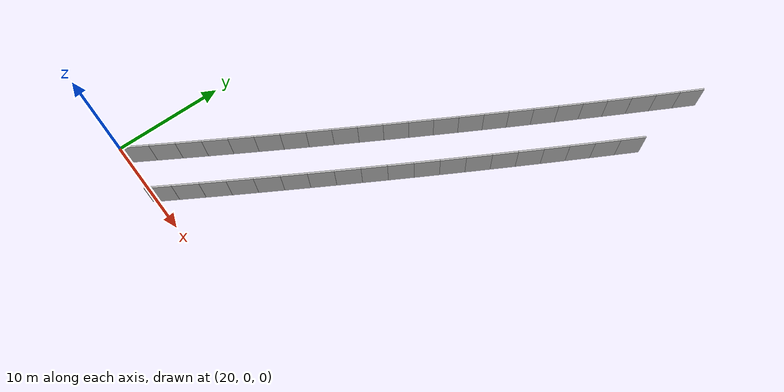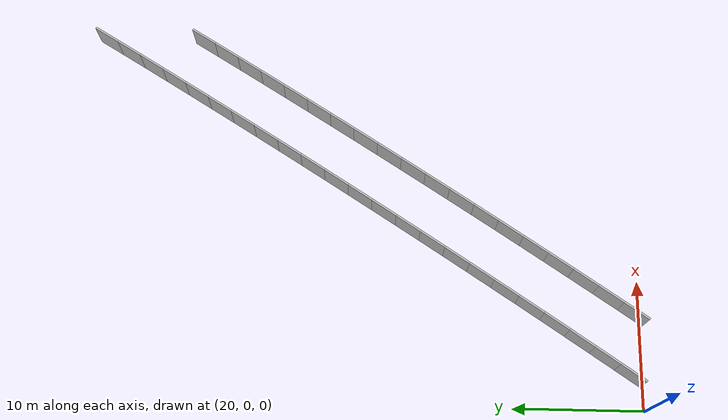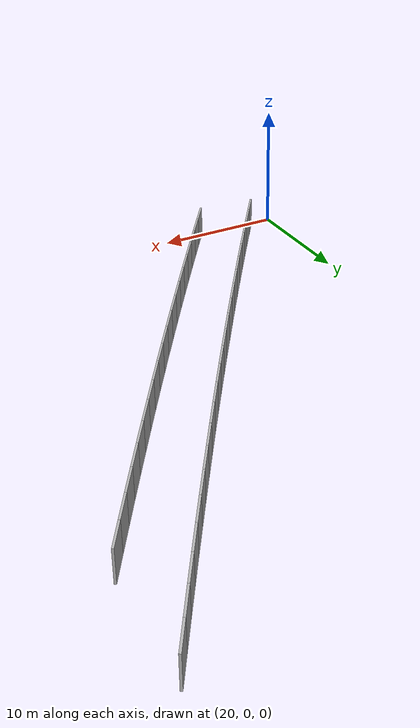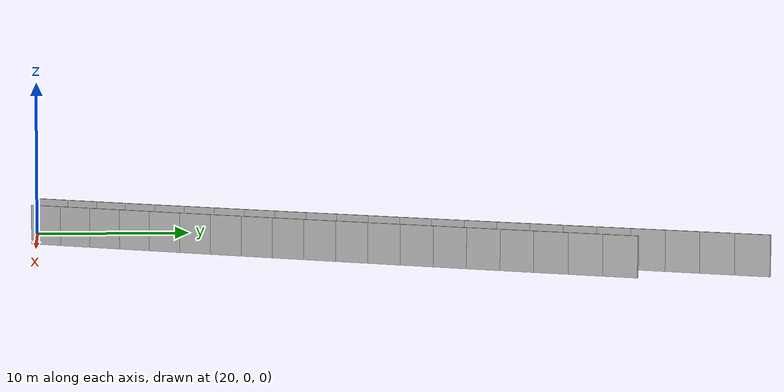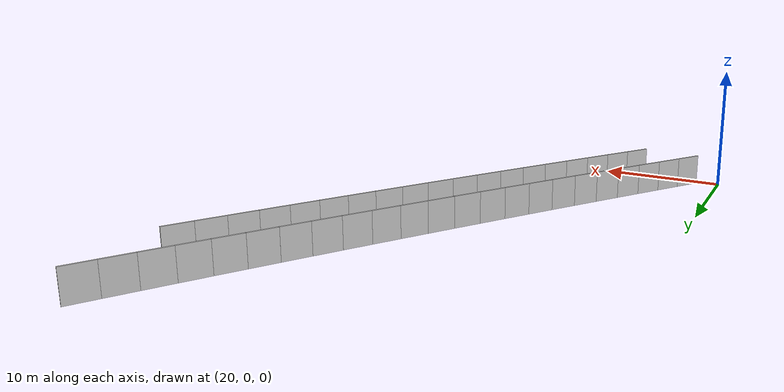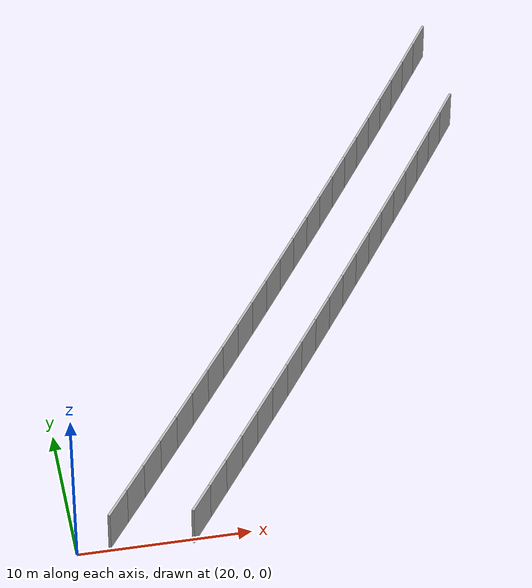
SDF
<?xml version="1.0" ?>
<sdf version="1.6">
  <model name="sps_4314">
    <pose frame="">0 0 0 0 -0 0</pose>
    <static>1</static>
    <self_collide>0</self_collide>
    <allow_auto_disable>0</allow_auto_disable>
    <link name="Wall4295">
      <kinematic>0</kinematic>
      <gravity>1</gravity>
      <self_collide>0</self_collide>
      <collision name="collision">
        <geometry>
          <box>
            <size>2.25463 0.15 2.5</size>
          </box>
        </geometry>
        <pose frame="">0 0 0 0 -0 0</pose>
      </collision>
      <visual name="visual">
        <geometry>
          <box>
            <size>2.25463 0.15 2.5</size>
          </box>
        </geometry>
        <pose frame="">0 0 0 0 -0 0</pose>
        <cast_shadows>1</cast_shadows>
        <transparency>0.0</transparency>
      </visual>
      <pose frame="">27.223 0.656997 1.25 0 -0 0.971576</pose>
    </link>
    <link name="Wall4296">
      <kinematic>0</kinematic>
      <gravity>1</gravity>
      <self_collide>0</self_collide>
      <collision name="collision">
        <geometry>
          <box>
            <size>2.25454 0.15 2.5</size>
          </box>
        </geometry>
        <pose frame="">0 0 0 0 -0 0</pose>
      </collision>
      <visual name="visual">
        <geometry>
          <box>
            <size>2.25454 0.15 2.5</size>
          </box>
        </geometry>
        <pose frame="">0 0 0 0 -0 0</pose>
        <cast_shadows>1</cast_shadows>
        <transparency>0.0</transparency>
      </visual>
      <pose frame="">28.4922 2.5204 1.25 0 -0 0.974136</pose>
    </link>
    <link name="Wall4297">
      <kinematic>0</kinematic>
      <gravity>1</gravity>
      <self_collide>0</self_collide>
      <collision name="collision">
        <geometry>
          <box>
            <size>2.25468 0.15 2.5</size>
          </box>
        </geometry>
        <pose frame="">0 0 0 0 -0 0</pose>
      </collision>
      <visual name="visual">
        <geometry>
          <box>
            <size>2.25468 0.15 2.5</size>
          </box>
        </geometry>
        <pose frame="">0 0 0 0 -0 0</pose>
        <cast_shadows>1</cast_shadows>
        <transparency>0.0</transparency>
      </visual>
      <pose frame="">29.7569 4.38689 1.25 0 -0 0.976404</pose>
    </link>
    <link name="Wall4298">
      <kinematic>0</kinematic>
      <gravity>1</gravity>
      <self_collide>0</self_collide>
      <collision name="collision">
        <geometry>
          <box>
            <size>2.25472 0.15 2.5</size>
          </box>
        </geometry>
        <pose frame="">0 0 0 0 -0 0</pose>
      </collision>
      <visual name="visual">
        <geometry>
          <box>
            <size>2.25472 0.15 2.5</size>
          </box>
        </geometry>
        <pose frame="">0 0 0 0 -0 0</pose>
        <cast_shadows>1</cast_shadows>
        <transparency>0.0</transparency>
      </visual>
      <pose frame="">31.0174 6.25639 1.25 0 -0 0.9788</pose>
    </link>
    <link name="Wall4299">
      <kinematic>0</kinematic>
      <gravity>1</gravity>
      <self_collide>0</self_collide>
      <collision name="collision">
        <geometry>
          <box>
            <size>2.2552 0.15 2.5</size>
          </box>
        </geometry>
        <pose frame="">0 0 0 0 -0 0</pose>
      </collision>
      <visual name="visual">
        <geometry>
          <box>
            <size>2.2552 0.15 2.5</size>
          </box>
        </geometry>
        <pose frame="">0 0 0 0 -0 0</pose>
        <cast_shadows>1</cast_shadows>
        <transparency>0.0</transparency>
      </visual>
      <pose frame="">32.2735 8.1291 1.25 0 -0 0.981157</pose>
    </link>
    <link name="Wall4300">
      <kinematic>0</kinematic>
      <gravity>1</gravity>
      <self_collide>0</self_collide>
      <collision name="collision">
        <geometry>
          <box>
            <size>2.2546 0.15 2.5</size>
          </box>
        </geometry>
        <pose frame="">0 0 0 0 -0 0</pose>
      </collision>
      <visual name="visual">
        <geometry>
          <box>
            <size>2.2546 0.15 2.5</size>
          </box>
        </geometry>
        <pose frame="">0 0 0 0 -0 0</pose>
        <cast_shadows>1</cast_shadows>
        <transparency>0.0</transparency>
      </visual>
      <pose frame="">33.5252 10.0047 1.25 0 -0 0.983454</pose>
    </link>
    <link name="Wall4301">
      <kinematic>0</kinematic>
      <gravity>1</gravity>
      <self_collide>0</self_collide>
      <collision name="collision">
        <geometry>
          <box>
            <size>2.25463 0.15 2.5</size>
          </box>
        </geometry>
        <pose frame="">0 0 0 0 -0 0</pose>
      </collision>
      <visual name="visual">
        <geometry>
          <box>
            <size>2.25463 0.15 2.5</size>
          </box>
        </geometry>
        <pose frame="">0 0 0 0 -0 0</pose>
        <cast_shadows>1</cast_shadows>
        <transparency>0.0</transparency>
      </visual>
      <pose frame="">34.7721 11.8831 1.25 0 -0 0.98603</pose>
    </link>
    <link name="Wall4302">
      <kinematic>0</kinematic>
      <gravity>1</gravity>
      <self_collide>0</self_collide>
      <collision name="collision">
        <geometry>
          <box>
            <size>2.25459 0.15 2.5</size>
          </box>
        </geometry>
        <pose frame="">0 0 0 0 -0 0</pose>
      </collision>
      <visual name="visual">
        <geometry>
          <box>
            <size>2.25459 0.15 2.5</size>
          </box>
        </geometry>
        <pose frame="">0 0 0 0 -0 0</pose>
        <cast_shadows>1</cast_shadows>
        <transparency>0.0</transparency>
      </visual>
      <pose frame="">36.0145 13.7645 1.25 0 -0 0.98832</pose>
    </link>
    <link name="Wall4303">
      <kinematic>0</kinematic>
      <gravity>1</gravity>
      <self_collide>0</self_collide>
      <collision name="collision">
        <geometry>
          <box>
            <size>2.25464 0.15 2.5</size>
          </box>
        </geometry>
        <pose frame="">0 0 0 0 -0 0</pose>
      </collision>
      <visual name="visual">
        <geometry>
          <box>
            <size>2.25464 0.15 2.5</size>
          </box>
        </geometry>
        <pose frame="">0 0 0 0 -0 0</pose>
        <cast_shadows>1</cast_shadows>
        <transparency>0.0</transparency>
      </visual>
      <pose frame="">37.2526 15.6488 1.25 0 -0 0.9907</pose>
    </link>
    <link name="Wall4304">
      <kinematic>0</kinematic>
      <gravity>1</gravity>
      <self_collide>0</self_collide>
      <collision name="collision">
        <geometry>
          <box>
            <size>2.25474 0.15 2.5</size>
          </box>
        </geometry>
        <pose frame="">0 0 0 0 -0 0</pose>
      </collision>
      <visual name="visual">
        <geometry>
          <box>
            <size>2.25474 0.15 2.5</size>
          </box>
        </geometry>
        <pose frame="">0 0 0 0 -0 0</pose>
        <cast_shadows>1</cast_shadows>
        <transparency>0.0</transparency>
      </visual>
      <pose frame="">38.4861 17.5361 1.25 0 -0 0.993057</pose>
    </link>
    <link name="Wall4305">
      <kinematic>0</kinematic>
      <gravity>1</gravity>
      <self_collide>0</self_collide>
      <collision name="collision">
        <geometry>
          <box>
            <size>2.2546 0.15 2.5</size>
          </box>
        </geometry>
        <pose frame="">0 0 0 0 -0 0</pose>
      </collision>
      <visual name="visual">
        <geometry>
          <box>
            <size>2.2546 0.15 2.5</size>
          </box>
        </geometry>
        <pose frame="">0 0 0 0 -0 0</pose>
        <cast_shadows>1</cast_shadows>
        <transparency>0.0</transparency>
      </visual>
      <pose frame="">39.7152 19.4263 1.25 0 -0 0.995438</pose>
    </link>
    <link name="Wall4306">
      <kinematic>0</kinematic>
      <gravity>1</gravity>
      <self_collide>0</self_collide>
      <collision name="collision">
        <geometry>
          <box>
            <size>2.25457 0.15 2.5</size>
          </box>
        </geometry>
        <pose frame="">0 0 0 0 -0 0</pose>
      </collision>
      <visual name="visual">
        <geometry>
          <box>
            <size>2.25457 0.15 2.5</size>
          </box>
        </geometry>
        <pose frame="">0 0 0 0 -0 0</pose>
        <cast_shadows>1</cast_shadows>
        <transparency>0.0</transparency>
      </visual>
      <pose frame="">40.9398 21.3193 1.25 0 -0 0.997751</pose>
    </link>
    <link name="Wall4307">
      <kinematic>0</kinematic>
      <gravity>1</gravity>
      <self_collide>0</self_collide>
      <collision name="collision">
        <geometry>
          <box>
            <size>2.25438 0.15 2.5</size>
          </box>
        </geometry>
        <pose frame="">0 0 0 0 -0 0</pose>
      </collision>
      <visual name="visual">
        <geometry>
          <box>
            <size>2.25438 0.15 2.5</size>
          </box>
        </geometry>
        <pose frame="">0 0 0 0 -0 0</pose>
        <cast_shadows>1</cast_shadows>
        <transparency>0.0</transparency>
      </visual>
      <pose frame="">42.1598 23.2152 1.25 0 -0 1.00034</pose>
    </link>
    <link name="Wall4308">
      <kinematic>0</kinematic>
      <gravity>1</gravity>
      <self_collide>0</self_collide>
      <collision name="collision">
        <geometry>
          <box>
            <size>2.25457 0.15 2.5</size>
          </box>
        </geometry>
        <pose frame="">0 0 0 0 -0 0</pose>
      </collision>
      <visual name="visual">
        <geometry>
          <box>
            <size>2.25457 0.15 2.5</size>
          </box>
        </geometry>
        <pose frame="">0 0 0 0 -0 0</pose>
        <cast_shadows>1</cast_shadows>
        <transparency>0.0</transparency>
      </visual>
      <pose frame="">43.3751 25.114 1.25 0 -0 1.00251</pose>
    </link>
    <link name="Wall4309">
      <kinematic>0</kinematic>
      <gravity>1</gravity>
      <self_collide>0</self_collide>
      <collision name="collision">
        <geometry>
          <box>
            <size>2.25479 0.15 2.5</size>
          </box>
        </geometry>
        <pose frame="">0 0 0 0 -0 0</pose>
      </collision>
      <visual name="visual">
        <geometry>
          <box>
            <size>2.25479 0.15 2.5</size>
          </box>
        </geometry>
        <pose frame="">0 0 0 0 -0 0</pose>
        <cast_shadows>1</cast_shadows>
        <transparency>0.0</transparency>
      </visual>
      <pose frame="">44.5862 27.0158 1.25 0 -0 1.00498</pose>
    </link>
    <link name="Wall4310">
      <kinematic>0</kinematic>
      <gravity>1</gravity>
      <self_collide>0</self_collide>
      <collision name="collision">
        <geometry>
          <box>
            <size>2.25455 0.15 2.5</size>
          </box>
        </geometry>
        <pose frame="">0 0 0 0 -0 0</pose>
      </collision>
      <visual name="visual">
        <geometry>
          <box>
            <size>2.25455 0.15 2.5</size>
          </box>
        </geometry>
        <pose frame="">0 0 0 0 -0 0</pose>
        <cast_shadows>1</cast_shadows>
        <transparency>0.0</transparency>
      </visual>
      <pose frame="">45.7927 28.9205 1.25 0 -0 1.00732</pose>
    </link>
    <link name="Wall4311">
      <kinematic>0</kinematic>
      <gravity>1</gravity>
      <self_collide>0</self_collide>
      <collision name="collision">
        <geometry>
          <box>
            <size>2.25461 0.15 2.5</size>
          </box>
        </geometry>
        <pose frame="">0 0 0 0 -0 0</pose>
      </collision>
      <visual name="visual">
        <geometry>
          <box>
            <size>2.25461 0.15 2.5</size>
          </box>
        </geometry>
        <pose frame="">0 0 0 0 -0 0</pose>
        <cast_shadows>1</cast_shadows>
        <transparency>0.0</transparency>
      </visual>
      <pose frame="">46.9947 30.828 1.25 0 -0 1.00977</pose>
    </link>
    <link name="Wall4312">
      <kinematic>0</kinematic>
      <gravity>1</gravity>
      <self_collide>0</self_collide>
      <collision name="collision">
        <geometry>
          <box>
            <size>2.2545 0.15 2.5</size>
          </box>
        </geometry>
        <pose frame="">0 0 0 0 -0 0</pose>
      </collision>
      <visual name="visual">
        <geometry>
          <box>
            <size>2.2545 0.15 2.5</size>
          </box>
        </geometry>
        <pose frame="">0 0 0 0 -0 0</pose>
        <cast_shadows>1</cast_shadows>
        <transparency>0.0</transparency>
      </visual>
      <pose frame="">48.192 32.7383 1.25 0 -0 1.01204</pose>
    </link>
    <link name="Wall4313">
      <kinematic>0</kinematic>
      <gravity>1</gravity>
      <self_collide>0</self_collide>
      <collision name="collision">
        <geometry>
          <box>
            <size>2.25462 0.15 2.5</size>
          </box>
        </geometry>
        <pose frame="">0 0 0 0 -0 0</pose>
      </collision>
      <visual name="visual">
        <geometry>
          <box>
            <size>2.25462 0.15 2.5</size>
          </box>
        </geometry>
        <pose frame="">0 0 0 0 -0 0</pose>
        <cast_shadows>1</cast_shadows>
        <transparency>0.0</transparency>
      </visual>
      <pose frame="">49.3849 34.6514 1.25 0 -0 1.01446</pose>
    </link>
    <link name="Wall6019">
      <kinematic>0</kinematic>
      <gravity>1</gravity>
      <self_collide>0</self_collide>
      <collision name="collision">
        <geometry>
          <box>
            <size>2.24477 0.15 2.5</size>
          </box>
        </geometry>
        <pose frame="">0 0 0 0 -0 0</pose>
      </collision>
      <visual name="visual">
        <geometry>
          <box>
            <size>2.24477 0.15 2.5</size>
          </box>
        </geometry>
        <pose frame="">0 0 0 0 -0 0</pose>
        <cast_shadows>1</cast_shadows>
        <transparency>0.0</transparency>
      </visual>
      <pose frame="">22.537 1.1393 1.25 0 -0 0.969332</pose>
    </link>
    <link name="Wall6020">
      <kinematic>0</kinematic>
      <gravity>1</gravity>
      <self_collide>0</self_collide>
      <collision name="collision">
        <geometry>
          <box>
            <size>2.24487 0.15 2.5</size>
          </box>
        </geometry>
        <pose frame="">0 0 0 0 -0 0</pose>
      </collision>
      <visual name="visual">
        <geometry>
          <box>
            <size>2.24487 0.15 2.5</size>
          </box>
        </geometry>
        <pose frame="">0 0 0 0 -0 0</pose>
        <cast_shadows>1</cast_shadows>
        <transparency>0.0</transparency>
      </visual>
      <pose frame="">23.805 2.99171 1.25 0 -0 0.971769</pose>
    </link>
    <link name="Wall6021">
      <kinematic>0</kinematic>
      <gravity>1</gravity>
      <self_collide>0</self_collide>
      <collision name="collision">
        <geometry>
          <box>
            <size>2.2447 0.15 2.5</size>
          </box>
        </geometry>
        <pose frame="">0 0 0 0 -0 0</pose>
      </collision>
      <visual name="visual">
        <geometry>
          <box>
            <size>2.2447 0.15 2.5</size>
          </box>
        </geometry>
        <pose frame="">0 0 0 0 -0 0</pose>
        <cast_shadows>1</cast_shadows>
        <transparency>0.0</transparency>
      </visual>
      <pose frame="">25.0685 4.84709 1.25 0 -0 0.974053</pose>
    </link>
    <link name="Wall6022">
      <kinematic>0</kinematic>
      <gravity>1</gravity>
      <self_collide>0</self_collide>
      <collision name="collision">
        <geometry>
          <box>
            <size>2.24471 0.15 2.5</size>
          </box>
        </geometry>
        <pose frame="">0 0 0 0 -0 0</pose>
      </collision>
      <visual name="visual">
        <geometry>
          <box>
            <size>2.24471 0.15 2.5</size>
          </box>
        </geometry>
        <pose frame="">0 0 0 0 -0 0</pose>
        <cast_shadows>1</cast_shadows>
        <transparency>0.0</transparency>
      </visual>
      <pose frame="">26.3278 6.70528 1.25 0 -0 0.976323</pose>
    </link>
    <link name="Wall6023">
      <kinematic>0</kinematic>
      <gravity>1</gravity>
      <self_collide>0</self_collide>
      <collision name="collision">
        <geometry>
          <box>
            <size>2.24479 0.15 2.5</size>
          </box>
        </geometry>
        <pose frame="">0 0 0 0 -0 0</pose>
      </collision>
      <visual name="visual">
        <geometry>
          <box>
            <size>2.24479 0.15 2.5</size>
          </box>
        </geometry>
        <pose frame="">0 0 0 0 -0 0</pose>
        <cast_shadows>1</cast_shadows>
        <transparency>0.0</transparency>
      </visual>
      <pose frame="">27.5828 8.56648 1.25 0 -0 0.978804</pose>
    </link>
    <link name="Wall6024">
      <kinematic>0</kinematic>
      <gravity>1</gravity>
      <self_collide>0</self_collide>
      <collision name="collision">
        <geometry>
          <box>
            <size>2.24499 0.15 2.5</size>
          </box>
        </geometry>
        <pose frame="">0 0 0 0 -0 0</pose>
      </collision>
      <visual name="visual">
        <geometry>
          <box>
            <size>2.24499 0.15 2.5</size>
          </box>
        </geometry>
        <pose frame="">0 0 0 0 -0 0</pose>
        <cast_shadows>1</cast_shadows>
        <transparency>0.0</transparency>
      </visual>
      <pose frame="">28.8332 10.4309 1.25 0 -0 0.981255</pose>
    </link>
    <link name="Wall6025">
      <kinematic>0</kinematic>
      <gravity>1</gravity>
      <self_collide>0</self_collide>
      <collision name="collision">
        <geometry>
          <box>
            <size>2.24474 0.15 2.5</size>
          </box>
        </geometry>
        <pose frame="">0 0 0 0 -0 0</pose>
      </collision>
      <visual name="visual">
        <geometry>
          <box>
            <size>2.24474 0.15 2.5</size>
          </box>
        </geometry>
        <pose frame="">0 0 0 0 -0 0</pose>
        <cast_shadows>1</cast_shadows>
        <transparency>0.0</transparency>
      </visual>
      <pose frame="">30.079 12.2983 1.25 0 -0 0.983631</pose>
    </link>
    <link name="Wall6026">
      <kinematic>0</kinematic>
      <gravity>1</gravity>
      <self_collide>0</self_collide>
      <collision name="collision">
        <geometry>
          <box>
            <size>2.24483 0.15 2.5</size>
          </box>
        </geometry>
        <pose frame="">0 0 0 0 -0 0</pose>
      </collision>
      <visual name="visual">
        <geometry>
          <box>
            <size>2.24483 0.15 2.5</size>
          </box>
        </geometry>
        <pose frame="">0 0 0 0 -0 0</pose>
        <cast_shadows>1</cast_shadows>
        <transparency>0.0</transparency>
      </visual>
      <pose frame="">31.3205 14.1685 1.25 0 -0 0.985878</pose>
    </link>
    <link name="Wall6027">
      <kinematic>0</kinematic>
      <gravity>1</gravity>
      <self_collide>0</self_collide>
      <collision name="collision">
        <geometry>
          <box>
            <size>2.24541 0.15 2.5</size>
          </box>
        </geometry>
        <pose frame="">0 0 0 0 -0 0</pose>
      </collision>
      <visual name="visual">
        <geometry>
          <box>
            <size>2.24541 0.15 2.5</size>
          </box>
        </geometry>
        <pose frame="">0 0 0 0 -0 0</pose>
        <cast_shadows>1</cast_shadows>
        <transparency>0.0</transparency>
      </visual>
      <pose frame="">32.558 16.0418 1.25 0 -0 0.988199</pose>
    </link>
    <link name="Wall6028">
      <kinematic>0</kinematic>
      <gravity>1</gravity>
      <self_collide>0</self_collide>
      <collision name="collision">
        <geometry>
          <box>
            <size>2.24477 0.15 2.5</size>
          </box>
        </geometry>
        <pose frame="">0 0 0 0 -0 0</pose>
      </collision>
      <visual name="visual">
        <geometry>
          <box>
            <size>2.24477 0.15 2.5</size>
          </box>
        </geometry>
        <pose frame="">0 0 0 0 -0 0</pose>
        <cast_shadows>1</cast_shadows>
        <transparency>0.0</transparency>
      </visual>
      <pose frame="">33.7909 17.9181 1.25 0 -0 0.990712</pose>
    </link>
    <link name="Wall6029">
      <kinematic>0</kinematic>
      <gravity>1</gravity>
      <self_collide>0</self_collide>
      <collision name="collision">
        <geometry>
          <box>
            <size>2.2447 0.15 2.5</size>
          </box>
        </geometry>
        <pose frame="">0 0 0 0 -0 0</pose>
      </collision>
      <visual name="visual">
        <geometry>
          <box>
            <size>2.2447 0.15 2.5</size>
          </box>
        </geometry>
        <pose frame="">0 0 0 0 -0 0</pose>
        <cast_shadows>1</cast_shadows>
        <transparency>0.0</transparency>
      </visual>
      <pose frame="">35.0189 19.7971 1.25 0 -0 0.993095</pose>
    </link>
    <link name="Wall6030">
      <kinematic>0</kinematic>
      <gravity>1</gravity>
      <self_collide>0</self_collide>
      <collision name="collision">
        <geometry>
          <box>
            <size>2.24473 0.15 2.5</size>
          </box>
        </geometry>
        <pose frame="">0 0 0 0 -0 0</pose>
      </collision>
      <visual name="visual">
        <geometry>
          <box>
            <size>2.24473 0.15 2.5</size>
          </box>
        </geometry>
        <pose frame="">0 0 0 0 -0 0</pose>
        <cast_shadows>1</cast_shadows>
        <transparency>0.0</transparency>
      </visual>
      <pose frame="">36.2425 21.679 1.25 0 -0 0.995471</pose>
    </link>
    <link name="Wall6031">
      <kinematic>0</kinematic>
      <gravity>1</gravity>
      <self_collide>0</self_collide>
      <collision name="collision">
        <geometry>
          <box>
            <size>2.24445 0.15 2.5</size>
          </box>
        </geometry>
        <pose frame="">0 0 0 0 -0 0</pose>
      </collision>
      <visual name="visual">
        <geometry>
          <box>
            <size>2.24445 0.15 2.5</size>
          </box>
        </geometry>
        <pose frame="">0 0 0 0 -0 0</pose>
        <cast_shadows>1</cast_shadows>
        <transparency>0.0</transparency>
      </visual>
      <pose frame="">37.4616 23.5637 1.25 0 -0 0.997818</pose>
    </link>
    <link name="Wall6032">
      <kinematic>0</kinematic>
      <gravity>1</gravity>
      <self_collide>0</self_collide>
      <collision name="collision">
        <geometry>
          <box>
            <size>2.24507 0.15 2.5</size>
          </box>
        </geometry>
        <pose frame="">0 0 0 0 -0 0</pose>
      </collision>
      <visual name="visual">
        <geometry>
          <box>
            <size>2.24507 0.15 2.5</size>
          </box>
        </geometry>
        <pose frame="">0 0 0 0 -0 0</pose>
        <cast_shadows>1</cast_shadows>
        <transparency>0.0</transparency>
      </visual>
      <pose frame="">38.6764 25.4514 1.25 0 -0 1.0002</pose>
    </link>
    <link name="Wall6033">
      <kinematic>0</kinematic>
      <gravity>1</gravity>
      <self_collide>0</self_collide>
      <collision name="collision">
        <geometry>
          <box>
            <size>2.24465 0.15 2.5</size>
          </box>
        </geometry>
        <pose frame="">0 0 0 0 -0 0</pose>
      </collision>
      <visual name="visual">
        <geometry>
          <box>
            <size>2.24465 0.15 2.5</size>
          </box>
        </geometry>
        <pose frame="">0 0 0 0 -0 0</pose>
        <cast_shadows>1</cast_shadows>
        <transparency>0.0</transparency>
      </visual>
      <pose frame="">39.8866 27.3421 1.25 0 -0 1.00266</pose>
    </link>
    <link name="Wall6034">
      <kinematic>0</kinematic>
      <gravity>1</gravity>
      <self_collide>0</self_collide>
      <collision name="collision">
        <geometry>
          <box>
            <size>2.24474 0.15 2.5</size>
          </box>
        </geometry>
        <pose frame="">0 0 0 0 -0 0</pose>
      </collision>
      <visual name="visual">
        <geometry>
          <box>
            <size>2.24474 0.15 2.5</size>
          </box>
        </geometry>
        <pose frame="">0 0 0 0 -0 0</pose>
        <cast_shadows>1</cast_shadows>
        <transparency>0.0</transparency>
      </visual>
      <pose frame="">41.0922 29.2355 1.25 0 -0 1.00488</pose>
    </link>
    <link name="Wall6035">
      <kinematic>0</kinematic>
      <gravity>1</gravity>
      <self_collide>0</self_collide>
      <collision name="collision">
        <geometry>
          <box>
            <size>2.24468 0.15 2.5</size>
          </box>
        </geometry>
        <pose frame="">0 0 0 0 -0 0</pose>
      </collision>
      <visual name="visual">
        <geometry>
          <box>
            <size>2.24468 0.15 2.5</size>
          </box>
        </geometry>
        <pose frame="">0 0 0 0 -0 0</pose>
        <cast_shadows>1</cast_shadows>
        <transparency>0.0</transparency>
      </visual>
      <pose frame="">42.2935 31.1317 1.25 0 -0 1.00731</pose>
    </link>
    <link name="Wall6036">
      <kinematic>0</kinematic>
      <gravity>1</gravity>
      <self_collide>0</self_collide>
      <collision name="collision">
        <geometry>
          <box>
            <size>2.24491 0.15 2.5</size>
          </box>
        </geometry>
        <pose frame="">0 0 0 0 -0 0</pose>
      </collision>
      <visual name="visual">
        <geometry>
          <box>
            <size>2.24491 0.15 2.5</size>
          </box>
        </geometry>
        <pose frame="">0 0 0 0 -0 0</pose>
        <cast_shadows>1</cast_shadows>
        <transparency>0.0</transparency>
      </visual>
      <pose frame="">43.4903 33.0309 1.25 0 -0 1.00975</pose>
    </link>
    <link name="Wall6037">
      <kinematic>0</kinematic>
      <gravity>1</gravity>
      <self_collide>0</self_collide>
      <collision name="collision">
        <geometry>
          <box>
            <size>2.24478 0.15 2.5</size>
          </box>
        </geometry>
        <pose frame="">0 0 0 0 -0 0</pose>
      </collision>
      <visual name="visual">
        <geometry>
          <box>
            <size>2.24478 0.15 2.5</size>
          </box>
        </geometry>
        <pose frame="">0 0 0 0 -0 0</pose>
        <cast_shadows>1</cast_shadows>
        <transparency>0.0</transparency>
      </visual>
      <pose frame="">44.6825 34.933 1.25 0 -0 1.01209</pose>
    </link>
    <link name="Wall6038">
      <kinematic>0</kinematic>
      <gravity>1</gravity>
      <self_collide>0</self_collide>
      <collision name="collision">
        <geometry>
          <box>
            <size>2.24488 0.15 2.5</size>
          </box>
        </geometry>
        <pose frame="">0 0 0 0 -0 0</pose>
      </collision>
      <visual name="visual">
        <geometry>
          <box>
            <size>2.24488 0.15 2.5</size>
          </box>
        </geometry>
        <pose frame="">0 0 0 0 -0 0</pose>
        <cast_shadows>1</cast_shadows>
        <transparency>0.0</transparency>
      </visual>
      <pose frame="">45.8701 36.8379 1.25 0 -0 1.01449</pose>
    </link>
    <link name="Wall6039">
      <kinematic>0</kinematic>
      <gravity>1</gravity>
      <self_collide>0</self_collide>
      <collision name="collision">
        <geometry>
          <box>
            <size>2.24467 0.15 2.5</size>
          </box>
        </geometry>
        <pose frame="">0 0 0 0 -0 0</pose>
      </collision>
      <visual name="visual">
        <geometry>
          <box>
            <size>2.24467 0.15 2.5</size>
          </box>
        </geometry>
        <pose frame="">0 0 0 0 -0 0</pose>
        <cast_shadows>1</cast_shadows>
        <transparency>0.0</transparency>
      </visual>
      <pose frame="">47.0532 38.7456 1.25 0 -0 1.01686</pose>
    </link>
    <link name="Wall6040">
      <kinematic>0</kinematic>
      <gravity>1</gravity>
      <self_collide>0</self_collide>
      <collision name="collision">
        <geometry>
          <box>
            <size>2.24475 0.15 2.5</size>
          </box>
        </geometry>
        <pose frame="">0 0 0 0 -0 0</pose>
      </collision>
      <visual name="visual">
        <geometry>
          <box>
            <size>2.24475 0.15 2.5</size>
          </box>
        </geometry>
        <pose frame="">0 0 0 0 -0 0</pose>
        <cast_shadows>1</cast_shadows>
        <transparency>0.0</transparency>
      </visual>
      <pose frame="">48.2318 40.656 1.25 0 -0 1.01918</pose>
    </link>
    <link name="Wall6041">
      <kinematic>0</kinematic>
      <gravity>1</gravity>
      <self_collide>0</self_collide>
      <collision name="collision">
        <geometry>
          <box>
            <size>2.2449 0.15 2.5</size>
          </box>
        </geometry>
        <pose frame="">0 0 0 0 -0 0</pose>
      </collision>
      <visual name="visual">
        <geometry>
          <box>
            <size>2.2449 0.15 2.5</size>
          </box>
        </geometry>
        <pose frame="">0 0 0 0 -0 0</pose>
        <cast_shadows>1</cast_shadows>
        <transparency>0.0</transparency>
      </visual>
      <pose frame="">49.4059 42.5693 1.25 0 -0 1.02162</pose>
    </link>
  </model>
</sdf>
